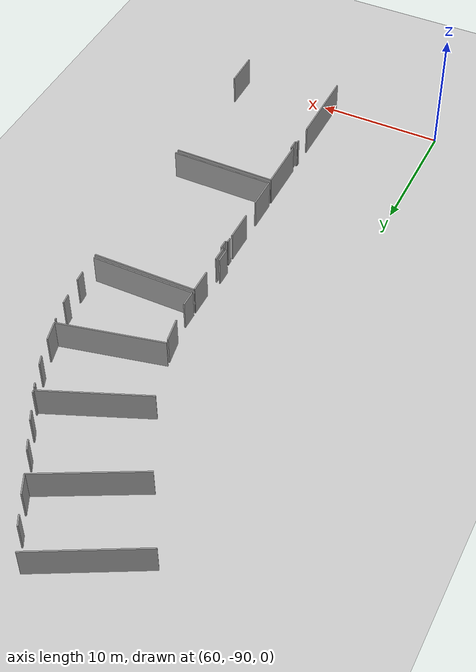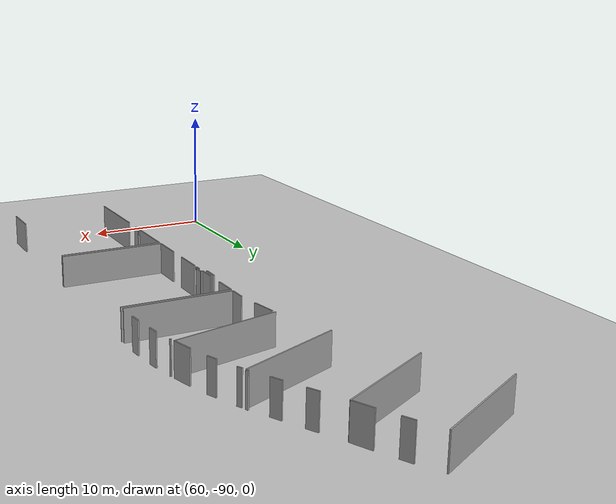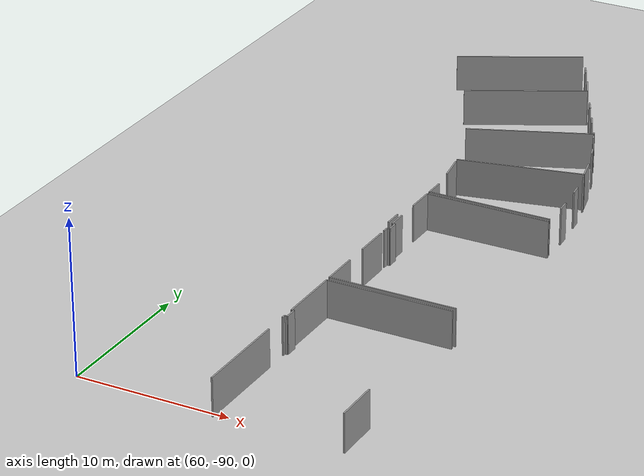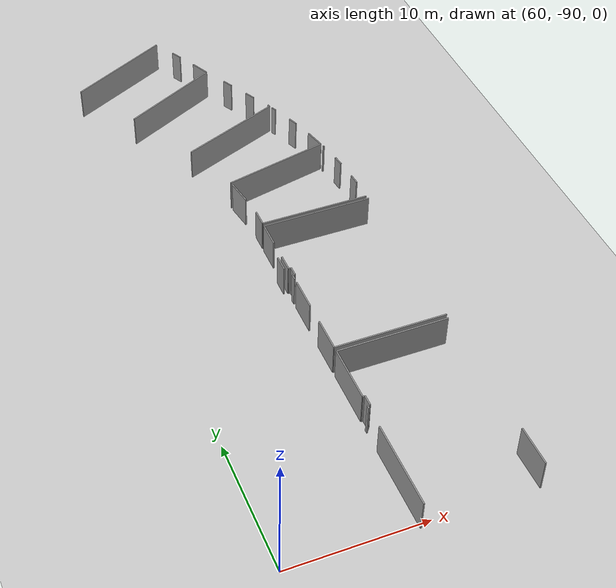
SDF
<sdf version="1.6">
 <world name="default">
  <model name="ground_plane">
   <static>1</static>
   <link name="link">
    <collision name="collision">
     <geometry><plane><normal>0 0 1</normal><size>100 100</size></plane></geometry>
     <surface><friction><ode><mu>100</mu><mu2>50</mu2></ode></friction></surface>
    </collision>
    <visual name="visual">
     <cast_shadows>0</cast_shadows>
     <geometry><plane><normal>0 0 1</normal><size>100 100</size></plane></geometry>
     <material>
      <script><uri>file://media/materials/scripts/gazebo.material</uri><name>Gazebo/Grey</name></script>
     </material>
    </visual>
   </link>
  </model>
  <model name="0510045922_A-40">
   <static>1</static>
   <link name="Wall_1910">
    <collision name="Wall_1910_Collision">
     <geometry><box><size>1.20887081401 0.1 2.5</size></box></geometry>
     <pose>0.604435407003 0 1.25 0 0 0</pose>
    </collision>
    <visual name="Wall_1910_Visual">
     <pose>0.604435407003 0 1.25 0 0 0</pose>
     <geometry><box><size>1.20887081401 0.1 2.5</size></box></geometry>
     <material>
      <script><uri>file://media/materials/scripts/gazebo.material</uri><name>Gazebo/Grey</name></script>
      <ambient>1 1 1 1</ambient>
     </material>
    </visual>
    <pose>202.974442397 -168.70087056 0 0 0 -1.57079632679</pose>
   </link>
   <link name="Wall_1948">
    <collision name="Wall_1948_Collision">
     <geometry><box><size>8.6717169896 0.1 2.5</size></box></geometry>
     <pose>4.3358584948 0 1.25 0 0 0</pose>
    </collision>
    <visual name="Wall_1948_Visual">
     <pose>4.3358584948 0 1.25 0 0 0</pose>
     <geometry><box><size>8.6717169896 0.1 2.5</size></box></geometry>
     <material>
      <script><uri>file://media/materials/scripts/gazebo.material</uri><name>Gazebo/Grey</name></script>
      <ambient>1 1 1 1</ambient>
     </material>
    </visual>
    <pose>203.007485544 -140.986058334 0 0 0 -2.66322383855</pose>
   </link>
   <link name="Wall_1949">
    <collision name="Wall_1949_Collision">
     <geometry><box><size>8.27380303187 0.1 2.5</size></box></geometry>
     <pose>4.13690151594 0 1.25 0 0 0</pose>
    </collision>
    <visual name="Wall_1949_Visual">
     <pose>4.13690151594 0 1.25 0 0 0</pose>
     <geometry><box><size>8.27380303187 0.1 2.5</size></box></geometry>
     <material>
      <script><uri>file://media/materials/scripts/gazebo.material</uri><name>Gazebo/Grey</name></script>
      <ambient>1 1 1 1</ambient>
     </material>
    </visual>
    <pose>205.633907352 -146.159090043 0 0 0 -2.67107560535</pose>
   </link>
   <link name="Wall_1957">
    <collision name="Wall_1957_Collision">
     <geometry><box><size>0.884261514261 0.1 2.5</size></box></geometry>
     <pose>0.44213075713 0 1.25 0 0 0</pose>
    </collision>
    <visual name="Wall_1957_Visual">
     <pose>0.44213075713 0 1.25 0 0 0</pose>
     <geometry><box><size>0.884261514261 0.1 2.5</size></box></geometry>
     <material>
      <script><uri>file://media/materials/scripts/gazebo.material</uri><name>Gazebo/Grey</name></script>
      <ambient>1 1 1 1</ambient>
     </material>
    </visual>
    <pose>203.891262629 -142.608476838 0 0 0 -1.10290655273</pose>
   </link>
   <link name="Wall_1958">
    <collision name="Wall_1958_Collision">
     <geometry><box><size>1.55906594953 0.1 2.5</size></box></geometry>
     <pose>0.779532974765 0 1.25 0 0 0</pose>
    </collision>
    <visual name="Wall_1958_Visual">
     <pose>0.779532974765 0 1.25 0 0 0</pose>
     <geometry><box><size>1.55906594953 0.1 2.5</size></box></geometry>
     <material>
      <script><uri>file://media/materials/scripts/gazebo.material</uri><name>Gazebo/Grey</name></script>
      <ambient>1 1 1 1</ambient>
     </material>
    </visual>
    <pose>204.979907225 -144.743826651 0 0 0 -1.13792169785</pose>
   </link>
   <link name="Wall_1959">
    <collision name="Wall_1959_Collision">
     <geometry><box><size>8.30372046147 0.1 2.5</size></box></geometry>
     <pose>4.15186023074 0 1.25 0 0 0</pose>
    </collision>
    <visual name="Wall_1959_Visual">
     <pose>4.15186023074 0 1.25 0 0 0</pose>
     <geometry><box><size>8.30372046147 0.1 2.5</size></box></geometry>
     <material>
      <script><uri>file://media/materials/scripts/gazebo.material</uri><name>Gazebo/Grey</name></script>
      <ambient>1 1 1 1</ambient>
     </material>
    </visual>
    <pose>208.773006291 -152.277409926 0 0 0 -2.75395259463</pose>
   </link>
   <link name="Wall_1963">
    <collision name="Wall_1963_Collision">
     <geometry><box><size>0.865096968766 0.1 2.5</size></box></geometry>
     <pose>0.432548484383 0 1.25 0 0 0</pose>
    </collision>
    <visual name="Wall_1963_Visual">
     <pose>0.432548484383 0 1.25 0 0 0</pose>
     <geometry><box><size>0.865096968766 0.1 2.5</size></box></geometry>
     <material>
      <script><uri>file://media/materials/scripts/gazebo.material</uri><name>Gazebo/Grey</name></script>
      <ambient>1 1 1 1</ambient>
     </material>
    </visual>
    <pose>206.511838343 -147.833106691 0 0 0 -1.09597966846</pose>
   </link>
   <link name="Wall_1964">
    <collision name="Wall_1964_Collision">
     <geometry><box><size>0.845278235156 0.1 2.5</size></box></geometry>
     <pose>0.422639117578 0 1.25 0 0 0</pose>
    </collision>
    <visual name="Wall_1964_Visual">
     <pose>0.422639117578 0 1.25 0 0 0</pose>
     <geometry><box><size>0.845278235156 0.1 2.5</size></box></geometry>
     <material>
      <script><uri>file://media/materials/scripts/gazebo.material</uri><name>Gazebo/Grey</name></script>
      <ambient>1 1 1 1</ambient>
     </material>
    </visual>
    <pose>207.632509373 -150.008870814 0 0 0 -1.1129313322</pose>
   </link>
   <link name="Wall_1965">
    <collision name="Wall_1965_Collision">
     <geometry><box><size>0.219896923195 0.1 2.5</size></box></geometry>
     <pose>0.109948461597 0 1.25 0 0 0</pose>
    </collision>
    <visual name="Wall_1965_Visual">
     <pose>0.109948461597 0 1.25 0 0 0</pose>
     <geometry><box><size>0.219896923195 0.1 2.5</size></box></geometry>
     <material>
      <script><uri>file://media/materials/scripts/gazebo.material</uri><name>Gazebo/Grey</name></script>
      <ambient>1 1 1 1</ambient>
     </material>
    </visual>
    <pose>208.720391434 -152.063900362 0 0 0 -1.32918182255</pose>
   </link>
   <link name="Wall_1966">
    <collision name="Wall_1966_Collision">
     <geometry><box><size>8.25494393558 0.1 2.5</size></box></geometry>
     <pose>4.12747196779 0 1.25 0 0 0</pose>
    </collision>
    <visual name="Wall_1966_Visual">
     <pose>4.12747196779 0 1.25 0 0 0</pose>
     <geometry><box><size>8.25494393558 0.1 2.5</size></box></geometry>
     <material>
      <script><uri>file://media/materials/scripts/gazebo.material</uri><name>Gazebo/Grey</name></script>
      <ambient>1 1 1 1</ambient>
     </material>
    </visual>
    <pose>210.725093728 -158.140789223 0 0 0 -2.9258326374</pose>
   </link>
   <link name="Wall_1974">
    <collision name="Wall_1974_Collision">
     <geometry><box><size>0.390167283497 0.1 2.5</size></box></geometry>
     <pose>0.195083641749 0 1.25 0 0 0</pose>
    </collision>
    <visual name="Wall_1974_Visual">
     <pose>0.195083641749 0 1.25 0 0 0</pose>
     <geometry><box><size>0.390167283497 0.1 2.5</size></box></geometry>
     <material>
      <script><uri>file://media/materials/scripts/gazebo.material</uri><name>Gazebo/Grey</name></script>
      <ambient>1 1 1 1</ambient>
     </material>
    </visual>
    <pose>208.883573743 -152.523708458 0 0 0 -1.13570405499</pose>
   </link>
   <link name="Wall_1975">
    <collision name="Wall_1975_Collision">
     <geometry><box><size>0.76766366888 0.1 2.5</size></box></geometry>
     <pose>0.38383183444 0 1.25 0 0 0</pose>
    </collision>
    <visual name="Wall_1975_Visual">
     <pose>0.38383183444 0 1.25 0 0 0</pose>
     <geometry><box><size>0.76766366888 0.1 2.5</size></box></geometry>
     <material>
      <script><uri>file://media/materials/scripts/gazebo.material</uri><name>Gazebo/Grey</name></script>
      <ambient>1 1 1 1</ambient>
     </material>
    </visual>
    <pose>209.641786872 -154.381495838 0 0 0 -1.21783864329</pose>
   </link>
   <link name="Wall_1976">
    <collision name="Wall_1976_Collision">
     <geometry><box><size>1.60517271408 0.1 2.5</size></box></geometry>
     <pose>0.802586357041 0 1.25 0 0 0</pose>
    </collision>
    <visual name="Wall_1976_Visual">
     <pose>0.802586357041 0 1.25 0 0 0</pose>
     <geometry><box><size>1.60517271408 0.1 2.5</size></box></geometry>
     <material>
      <script><uri>file://media/materials/scripts/gazebo.material</uri><name>Gazebo/Grey</name></script>
      <ambient>1 1 1 1</ambient>
     </material>
    </visual>
    <pose>210.349672746 -156.580135985 0 0 0 -1.33472782461</pose>
   </link>
   <link name="Wall_1977">
    <collision name="Wall_1977_Collision">
     <geometry><box><size>8.21401791955 0.1 2.5</size></box></geometry>
     <pose>4.10700895978 0 1.25 0 0 0</pose>
    </collision>
    <visual name="Wall_1977_Visual">
     <pose>4.10700895978 0 1.25 0 0 0</pose>
     <geometry><box><size>8.21401791955 0.1 2.5</size></box></geometry>
     <material>
      <script><uri>file://media/materials/scripts/gazebo.material</uri><name>Gazebo/Grey</name></script>
      <ambient>1 1 1 1</ambient>
     </material>
    </visual>
    <pose>211.486865349 -164.958607104 0 0 0 3.14159265359</pose>
   </link>
   <link name="Wall_1978">
    <collision name="Wall_1978_Collision">
     <geometry><box><size>1.31410052742 0.1 2.5</size></box></geometry>
     <pose>0.65705026371 0 1.25 0 0 0</pose>
    </collision>
    <visual name="Wall_1978_Visual">
     <pose>0.65705026371 0 1.25 0 0 0</pose>
     <geometry><box><size>1.31410052742 0.1 2.5</size></box></geometry>
     <material>
      <script><uri>file://media/materials/scripts/gazebo.material</uri><name>Gazebo/Grey</name></script>
      <ambient>1 1 1 1</ambient>
     </material>
    </visual>
    <pose>203.27284743 -164.958607104 0 0 0 1.57079632679</pose>
   </link>
   <link name="Wall_1979">
    <collision name="Wall_1979_Collision">
     <geometry><box><size>1.92151568328 0.1 2.5</size></box></geometry>
     <pose>0.960757841639 0 1.25 0 0 0</pose>
    </collision>
    <visual name="Wall_1979_Visual">
     <pose>0.960757841639 0 1.25 0 0 0</pose>
     <geometry><box><size>1.92151568328 0.1 2.5</size></box></geometry>
     <material>
      <script><uri>file://media/materials/scripts/gazebo.material</uri><name>Gazebo/Grey</name></script>
      <ambient>1 1 1 1</ambient>
     </material>
    </visual>
    <pose>203.057812798 -162.089953613 0 0 0 1.73583627074</pose>
   </link>
   <link name="Wall_1981">
    <collision name="Wall_1981_Collision">
     <geometry><box><size>0.119844075374 0.1 2.5</size></box></geometry>
     <pose>0.059922037687 0 1.25 0 0 0</pose>
    </collision>
    <visual name="Wall_1981_Visual">
     <pose>0.059922037687 0 1.25 0 0 0</pose>
     <geometry><box><size>0.119844075374 0.1 2.5</size></box></geometry>
     <material>
      <script><uri>file://media/materials/scripts/gazebo.material</uri><name>Gazebo/Grey</name></script>
      <ambient>1 1 1 1</ambient>
     </material>
    </visual>
    <pose>210.80439728 -158.412759738 0 0 0 -1.24703370268</pose>
   </link>
   <link name="Wall_1982">
    <collision name="Wall_1982_Collision">
     <geometry><box><size>0.81910765242 0.1 2.5</size></box></geometry>
     <pose>0.40955382621 0 1.25 0 0 0</pose>
    </collision>
    <visual name="Wall_1982_Visual">
     <pose>0.40955382621 0 1.25 0 0 0</pose>
     <geometry><box><size>0.81910765242 0.1 2.5</size></box></geometry>
     <material>
      <script><uri>file://media/materials/scripts/gazebo.material</uri><name>Gazebo/Grey</name></script>
      <ambient>1 1 1 1</ambient>
     </material>
    </visual>
    <pose>211.132795323 -160.05500413 0 0 0 -1.44228447231</pose>
   </link>
   <link name="Wall_1983">
    <collision name="Wall_1983_Collision">
     <geometry><box><size>0.872128455062 0.1 2.5</size></box></geometry>
     <pose>0.436064227531 0 1.25 0 0 0</pose>
    </collision>
    <visual name="Wall_1983_Visual">
     <pose>0.436064227531 0 1.25 0 0 0</pose>
     <geometry><box><size>0.872128455062 0.1 2.5</size></box></geometry>
     <material>
      <script><uri>file://media/materials/scripts/gazebo.material</uri><name>Gazebo/Grey</name></script>
      <ambient>1 1 1 1</ambient>
     </material>
    </visual>
    <pose>211.400190634 -162.434364873 0 0 0 -1.49377855404</pose>
   </link>
   <link name="Wall_1985">
    <collision name="Wall_1985_Collision">
     <geometry><box><size>0.422698100019 0.1 2.5</size></box></geometry>
     <pose>0.21134905001 0 1.25 0 0 0</pose>
    </collision>
    <visual name="Wall_1985_Visual">
     <pose>0.21134905001 0 1.25 0 0 0</pose>
     <geometry><box><size>0.422698100019 0.1 2.5</size></box></geometry>
     <material>
      <script><uri>file://media/materials/scripts/gazebo.material</uri><name>Gazebo/Grey</name></script>
      <ambient>1 1 1 1</ambient>
     </material>
    </visual>
    <pose>203.278185169 -171.113020271 0 0 0 1.57079632679</pose>
   </link>
   <link name="Wall_1986">
    <collision name="Wall_1986_Collision">
     <geometry><box><size>0.181483128932 0.1 2.5</size></box></geometry>
     <pose>0.0907415644659 0 1.25 0 0 0</pose>
    </collision>
    <visual name="Wall_1986_Visual">
     <pose>0.0907415644659 0 1.25 0 0 0</pose>
     <geometry><box><size>0.181483128932 0.1 2.5</size></box></geometry>
     <material>
      <script><uri>file://media/materials/scripts/gazebo.material</uri><name>Gazebo/Grey</name></script>
      <ambient>1 1 1 1</ambient>
     </material>
    </visual>
    <pose>203.278185169 -170.690322171 0 0 0 0.0</pose>
   </link>
   <link name="Wall_1987">
    <collision name="Wall_1987_Collision">
     <geometry><box><size>0.716527927813 0.1 2.5</size></box></geometry>
     <pose>0.358263963907 0 1.25 0 0 0</pose>
    </collision>
    <visual name="Wall_1987_Visual">
     <pose>0.358263963907 0 1.25 0 0 0</pose>
     <geometry><box><size>0.716527927813 0.1 2.5</size></box></geometry>
     <material>
      <script><uri>file://media/materials/scripts/gazebo.material</uri><name>Gazebo/Grey</name></script>
      <ambient>1 1 1 1</ambient>
     </material>
    </visual>
    <pose>203.459668298 -170.690322171 0 0 0 1.57079632679</pose>
   </link>
   <link name="Wall_1988">
    <collision name="Wall_1988_Collision">
     <geometry><box><size>0.191141894897 0.1 2.5</size></box></geometry>
     <pose>0.0955709474487 0 1.25 0 0 0</pose>
    </collision>
    <visual name="Wall_1988_Visual">
     <pose>0.0955709474487 0 1.25 0 0 0</pose>
     <geometry><box><size>0.191141894897 0.1 2.5</size></box></geometry>
     <material>
      <script><uri>file://media/materials/scripts/gazebo.material</uri><name>Gazebo/Grey</name></script>
      <ambient>1 1 1 1</ambient>
     </material>
    </visual>
    <pose>203.459668298 -169.973794243 0 0 0 3.14159265359</pose>
   </link>
   <link name="Wall_1989">
    <collision name="Wall_1989_Collision">
     <geometry><box><size>1.25182690475 0.1 2.5</size></box></geometry>
     <pose>0.625913452373 0 1.25 0 0 0</pose>
    </collision>
    <visual name="Wall_1989_Visual">
     <pose>0.625913452373 0 1.25 0 0 0</pose>
     <geometry><box><size>1.25182690475 0.1 2.5</size></box></geometry>
     <material>
      <script><uri>file://media/materials/scripts/gazebo.material</uri><name>Gazebo/Grey</name></script>
      <ambient>1 1 1 1</ambient>
     </material>
    </visual>
    <pose>203.268526403 -169.973794243 0 0 0 1.57079632679</pose>
   </link>
   <link name="Wall_1990">
    <collision name="Wall_1990_Collision">
     <geometry><box><size>1.93404079558 0.1 2.5</size></box></geometry>
     <pose>0.967020397789 0 1.25 0 0 0</pose>
    </collision>
    <visual name="Wall_1990_Visual">
     <pose>0.967020397789 0 1.25 0 0 0</pose>
     <geometry><box><size>1.93404079558 0.1 2.5</size></box></geometry>
     <material>
      <script><uri>file://media/materials/scripts/gazebo.material</uri><name>Gazebo/Grey</name></script>
      <ambient>1 1 1 1</ambient>
     </material>
    </visual>
    <pose>203.268526403 -167.195373959 0 0 0 1.57079632679</pose>
   </link>
   <link name="Wall_1991">
    <collision name="Wall_1991_Collision">
     <geometry><box><size>8.28467941793 0.1 2.5</size></box></geometry>
     <pose>4.14233970897 0 1.25 0 0 0</pose>
    </collision>
    <visual name="Wall_1991_Visual">
     <pose>4.14233970897 0 1.25 0 0 0</pose>
     <geometry><box><size>8.28467941793 0.1 2.5</size></box></geometry>
     <material>
      <script><uri>file://media/materials/scripts/gazebo.material</uri><name>Gazebo/Grey</name></script>
      <ambient>1 1 1 1</ambient>
     </material>
    </visual>
    <pose>203.268526403 -165.261333164 0 0 0 0.0</pose>
   </link>
   <link name="Wall_2074">
    <collision name="Wall_2074_Collision">
     <geometry><box><size>6.35190951261 0.1 2.5</size></box></geometry>
     <pose>3.17595475631 0 1.25 0 0 0</pose>
    </collision>
    <visual name="Wall_2074_Visual">
     <pose>3.17595475631 0 1.25 0 0 0</pose>
     <geometry><box><size>6.35190951261 0.1 2.5</size></box></geometry>
     <material>
      <script><uri>file://media/materials/scripts/gazebo.material</uri><name>Gazebo/Grey</name></script>
      <ambient>1 1 1 1</ambient>
     </material>
    </visual>
    <pose>203.27284743 -191.509283853 0 0 0 1.57079632679</pose>
   </link>
   <link name="Wall_2075">
    <collision name="Wall_2075_Collision">
     <geometry><box><size>0.252907161467 0.1 2.5</size></box></geometry>
     <pose>0.126453580733 0 1.25 0 0 0</pose>
    </collision>
    <visual name="Wall_2075_Visual">
     <pose>0.126453580733 0 1.25 0 0 0</pose>
     <geometry><box><size>0.252907161467 0.1 2.5</size></box></geometry>
     <material>
      <script><uri>file://media/materials/scripts/gazebo.material</uri><name>Gazebo/Grey</name></script>
      <ambient>1 1 1 1</ambient>
     </material>
    </visual>
    <pose>203.27284743 -183.601804664 0 0 0 1.57079632679</pose>
   </link>
   <link name="Wall_2076">
    <collision name="Wall_2076_Collision">
     <geometry><box><size>0.184024909449 0.1 2.5</size></box></geometry>
     <pose>0.0920124547245 0 1.25 0 0 0</pose>
    </collision>
    <visual name="Wall_2076_Visual">
     <pose>0.0920124547245 0 1.25 0 0 0</pose>
     <geometry><box><size>0.184024909449 0.1 2.5</size></box></geometry>
     <material>
      <script><uri>file://media/materials/scripts/gazebo.material</uri><name>Gazebo/Grey</name></script>
      <ambient>1 1 1 1</ambient>
     </material>
    </visual>
    <pose>203.27284743 -183.348897503 0 0 0 0.0</pose>
   </link>
   <link name="Wall_2077">
    <collision name="Wall_2077_Collision">
     <geometry><box><size>0.791002096969 0.1 2.5</size></box></geometry>
     <pose>0.395501048484 0 1.25 0 0 0</pose>
    </collision>
    <visual name="Wall_2077_Visual">
     <pose>0.395501048484 0 1.25 0 0 0</pose>
     <geometry><box><size>0.791002096969 0.1 2.5</size></box></geometry>
     <material>
      <script><uri>file://media/materials/scripts/gazebo.material</uri><name>Gazebo/Grey</name></script>
      <ambient>1 1 1 1</ambient>
     </material>
    </visual>
    <pose>203.456872339 -183.348897503 0 0 0 1.57079632679</pose>
   </link>
   <link name="Wall_2078">
    <collision name="Wall_2078_Collision">
     <geometry><box><size>0.16496155557 0.1 2.5</size></box></geometry>
     <pose>0.0824807777848 0 1.25 0 0 0</pose>
    </collision>
    <visual name="Wall_2078_Visual">
     <pose>0.0824807777848 0 1.25 0 0 0</pose>
     <geometry><box><size>0.16496155557 0.1 2.5</size></box></geometry>
     <material>
      <script><uri>file://media/materials/scripts/gazebo.material</uri><name>Gazebo/Grey</name></script>
      <ambient>1 1 1 1</ambient>
     </material>
    </visual>
    <pose>203.456872339 -182.557895406 0 0 0 3.14159265359</pose>
   </link>
   <link name="Wall_2079">
    <collision name="Wall_2079_Collision">
     <geometry><box><size>4.20868018047 0.1 2.5</size></box></geometry>
     <pose>2.10434009023 0 1.25 0 0 0</pose>
    </collision>
    <visual name="Wall_2079_Visual">
     <pose>2.10434009023 0 1.25 0 0 0</pose>
     <geometry><box><size>4.20868018047 0.1 2.5</size></box></geometry>
     <material>
      <script><uri>file://media/materials/scripts/gazebo.material</uri><name>Gazebo/Grey</name></script>
      <ambient>1 1 1 1</ambient>
     </material>
    </visual>
    <pose>203.291910784 -182.557895406 0 0 0 1.57079632679</pose>
   </link>
   <link name="Wall_2080">
    <collision name="Wall_2080_Collision">
     <geometry><box><size>8.21960983669 0.1 2.5</size></box></geometry>
     <pose>4.10980491835 0 1.25 0 0 0</pose>
    </collision>
    <visual name="Wall_2080_Visual">
     <pose>4.10980491835 0 1.25 0 0 0</pose>
     <geometry><box><size>8.21960983669 0.1 2.5</size></box></geometry>
     <material>
      <script><uri>file://media/materials/scripts/gazebo.material</uri><name>Gazebo/Grey</name></script>
      <ambient>1 1 1 1</ambient>
     </material>
    </visual>
    <pose>203.291910784 -178.349215225 0 0 0 0.0</pose>
   </link>
   <link name="Wall_2085">
    <collision name="Wall_2085_Collision">
     <geometry><box><size>2.9431573394 0.1 2.5</size></box></geometry>
     <pose>1.4715786697 0 1.25 0 0 0</pose>
    </collision>
    <visual name="Wall_2085_Visual">
     <pose>1.4715786697 0 1.25 0 0 0</pose>
     <geometry><box><size>2.9431573394 0.1 2.5</size></box></geometry>
     <material>
      <script><uri>file://media/materials/scripts/gazebo.material</uri><name>Gazebo/Grey</name></script>
      <ambient>1 1 1 1</ambient>
     </material>
    </visual>
    <pose>211.51152062 -188.566156192 0 0 0 -1.56630546831</pose>
   </link>
   <link name="Wall_2090">
    <collision name="Wall_2090_Collision">
     <geometry><box><size>2.4462095698 0.1 2.5</size></box></geometry>
     <pose>1.2231047849 0 1.25 0 0 0</pose>
    </collision>
    <visual name="Wall_2090_Visual">
     <pose>1.2231047849 0 1.25 0 0 0</pose>
     <geometry><box><size>2.4462095698 0.1 2.5</size></box></geometry>
     <material>
      <script><uri>file://media/materials/scripts/gazebo.material</uri><name>Gazebo/Grey</name></script>
      <ambient>1 1 1 1</ambient>
     </material>
    </visual>
    <pose>203.278185169 -171.445230984 0 0 0 -1.57079632679</pose>
   </link>
   <link name="Wall_2091">
    <collision name="Wall_2091_Collision">
     <geometry><box><size>2.52881743661 0.1 2.5</size></box></geometry>
     <pose>1.26440871831 0 1.25 0 0 0</pose>
    </collision>
    <visual name="Wall_2091_Visual">
     <pose>1.26440871831 0 1.25 0 0 0</pose>
     <geometry><box><size>2.52881743661 0.1 2.5</size></box></geometry>
     <material>
      <script><uri>file://media/materials/scripts/gazebo.material</uri><name>Gazebo/Grey</name></script>
      <ambient>1 1 1 1</ambient>
     </material>
    </visual>
    <pose>203.278185169 -175.456923175 0 0 0 -1.57079632679</pose>
   </link>
   <link name="Wall_2092">
    <collision name="Wall_2092_Collision">
     <geometry><box><size>8.28468097759 0.1 2.5</size></box></geometry>
     <pose>4.1423404888 0 1.25 0 0 0</pose>
    </collision>
    <visual name="Wall_2092_Visual">
     <pose>4.1423404888 0 1.25 0 0 0</pose>
     <geometry><box><size>8.28468097759 0.1 2.5</size></box></geometry>
     <material>
      <script><uri>file://media/materials/scripts/gazebo.material</uri><name>Gazebo/Grey</name></script>
      <ambient>1 1 1 1</ambient>
     </material>
    </visual>
    <pose>203.278185169 -177.985740611 0 0 0 -0.000613609789834</pose>
   </link>
   <pose>-134.15 101.210036856 0 0 0 0</pose>
  </model>
 </world>
</sdf>
